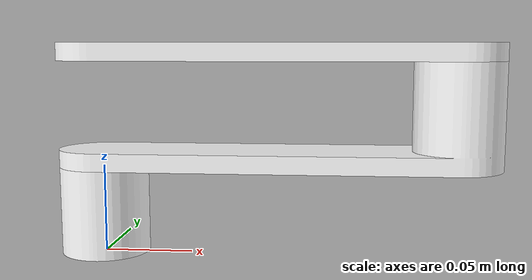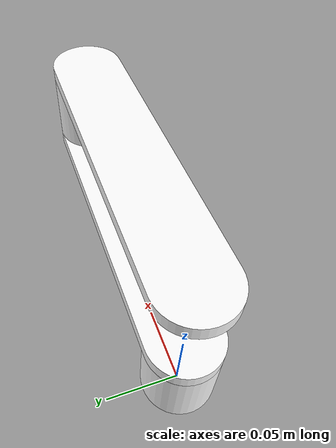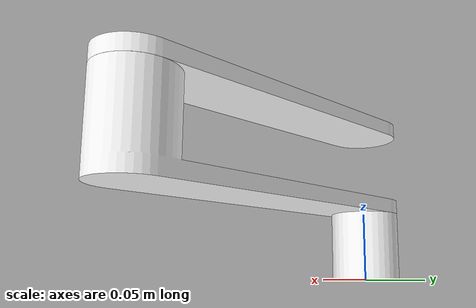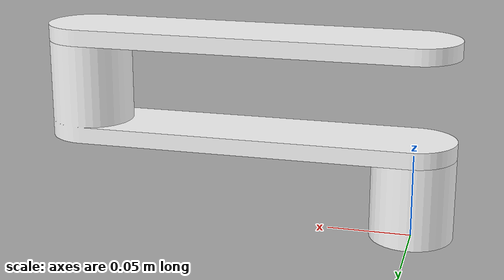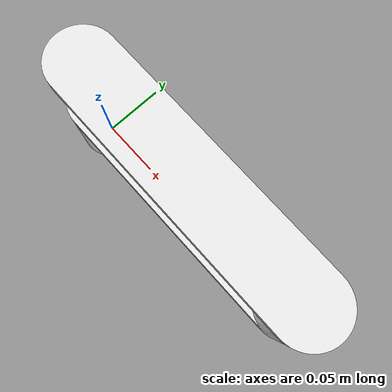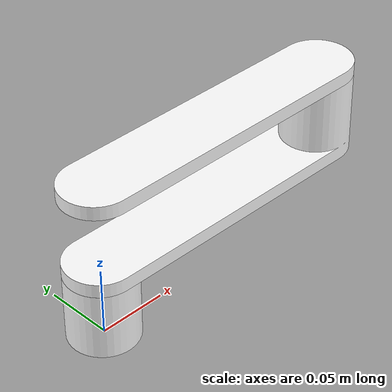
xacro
<?xml version="1.0"?>
<robot xmlns:xacro="http://www.ros.org/wiki/xacro" name="eyou_test">
    <xacro:arg name="initial_positions_file" default="initial_positions.yaml" />

    <!-- Import eyou_test urdf file -->
    <xacro:include filename="$(find eyou_test_ros2_control)/urdf/eyou_test.urdf" />

    <!-- Import control_xacro -->
    <xacro:include filename="eyou_test.ros2_control.xacro" />

    <xacro:eyou_test_ros2_control name="FakeSystem" initial_positions_file="$(arg initial_positions_file)"/>

</robot>

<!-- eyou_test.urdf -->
<robot
  name="eyou_test">
  <link
    name="base_link">
    <inertial>
      <origin
        xyz="0 4.87271479064922E-19 0.025"
        rpy="0 0 0" />
      <mass
        value="0.098174770424681" />
      <inertia
        ixx="3.5792885050665E-05"
        ixy="0"
        ixz="-1.18574757816703E-37"
        iyy="3.5792885050665E-05"
        iyz="2.86854741572313E-37"
        izz="3.06796157577128E-05" />
    </inertial>
    <visual>
      <origin
        xyz="0 0 0"
        rpy="0 0 0" />
      <geometry>
        <mesh
          filename="package://eyou_test_ros2_control/urdf/base_link.STL" />
      </geometry>
      <material
        name="">
        <color
          rgba="1 1 1 1" />
      </material>
    </visual>
    <collision>
      <origin
        xyz="0 0 0"
        rpy="0 0 0" />
      <geometry>
        <mesh
          filename="package://eyou_test_ros2_control/urdf/base_link.STL" />
      </geometry>
    </collision>
  </link>
  <link
    name="link_1">
    <inertial>
      <origin
        xyz="0.145073639685149 -2.34231672767898E-20 0.0185220919055448"
        rpy="0 0 0" />
      <mass
        value="0.217809724509617" />
      <inertia
        ixx="6.06911379104774E-05"
        ixy="2.89495801659071E-21"
        ixz="-1.30522207489097E-21"
        iyy="0.000611207345426506"
        iyz="8.73347437482334E-22"
        izz="0.000628998413091951" />
    </inertial>
    <visual>
      <origin
        xyz="0 0 0"
        rpy="0 0 0" />
      <geometry>
        <mesh
          filename="package://eyou_test_ros2_control/urdf/link_1.STL" />
      </geometry>
      <material
        name="">
        <color
          rgba="1 1 1 1" />
      </material>
    </visual>
    <collision>
      <origin
        xyz="0 0 0"
        rpy="0 0 0" />
      <geometry>
        <mesh
          filename="package://eyou_test_ros2_control/urdf/link_1.STL" />
      </geometry>
    </collision>
  </link>
  <joint
    name="motor_joint_13"
    type="revolute">
    <origin
      xyz="0 0 0.05"
      rpy="0 0 0" />
    <parent
      link="base_link" />
    <child
      link="link_1" />
    <axis
      xyz="0 0 1" />
    <limit
      lower="-3.14"
      upper="3.14"
      effort="10"
      velocity="10" />
  </joint>
  <link
    name="link_2">
    <inertial>
      <origin
        xyz="0.0992264907669502 0.017572859092566 0.00499999999999999"
        rpy="0 0 0" />
      <mass
        value="0.119634954084936" />
      <inertia
        ixx="2.48982528598124E-05"
        ixy="-3.13438599634792E-21"
        ixz="-4.32236335917811E-21"
        iyy="0.000575414460375842"
        iyz="8.97854924089677E-24"
        izz="0.000598318797334238" />
    </inertial>
    <visual>
      <origin
        xyz="0 0 0"
        rpy="0 0 0" />
      <geometry>
        <mesh
          filename="package://eyou_test_ros2_control/urdf/link_2.STL" />
      </geometry>
      <material
        name="">
        <color
          rgba="1 1 1 1" />
      </material>
    </visual>
    <collision>
      <origin
        xyz="0 0 0"
        rpy="0 0 0" />
      <geometry>
        <mesh
          filename="package://eyou_test_ros2_control/urdf/link_2.STL" />
      </geometry>
    </collision>
  </link>
  <joint
    name="motor_joint_10"
    type="revolute">
    <origin
      xyz="0.19923 0.017573 0.06"
      rpy="0 0 3.1416" />
    <parent
      link="link_1" />
    <child
      link="link_2" />
    <axis
      xyz="0 0 1" />
    <limit
      lower="-3.14"
      upper="3.14"
      effort="10"
      velocity="10" />
  </joint>
  <!-- ====================== ros2_control 硬件接口配置 ====================== -->
  <ros2_control name="EyouSystem" type="system">
    <hardware>
      <!-- 硬件插件名称（对应plugin_description.xml） -->
      <plugin>eyou_test_ros2_control/EyouSystem</plugin>
      <!-- 硬件参数：CAN接口和电机ID -->
      <param name="can_interface">can0</param>
      <param name="motor_ids">13,10</param>

      <!-- 电机13的独立参数 (ID=13) -->
      <param name="motor_13_speed">8.0</param>
      <param name="motor_13_torque">1.0</param>
      <param name="motor_13_accel">32.0</param>
      <param name="motor_13_decel">32.0</param>

      <!-- 电机10的独立参数 (ID=10) -->
      <param name="motor_10_speed">8.0</param>
      <param name="motor_10_torque">8.0</param>
      <param name="motor_10_accel">32.0</param>
      <param name="motor_10_decel">32.0</param>
    </hardware>

    <!-- 电机1（ID 13）的接口定义 -->
    <joint name="motor_joint_13">
      <command_interface name="position"/>
      <state_interface name="position"/>
      <state_interface name="velocity"/>
      <state_interface name="effort"/>
    </joint>

    <!-- 电机2（ID 10）的接口定义 -->
    <joint name="motor_joint_10">
      <command_interface name="position"/>
      <state_interface name="position"/>
      <state_interface name="velocity"/>
      <state_interface name="effort"/>
    </joint>
  </ros2_control>
</robot>
